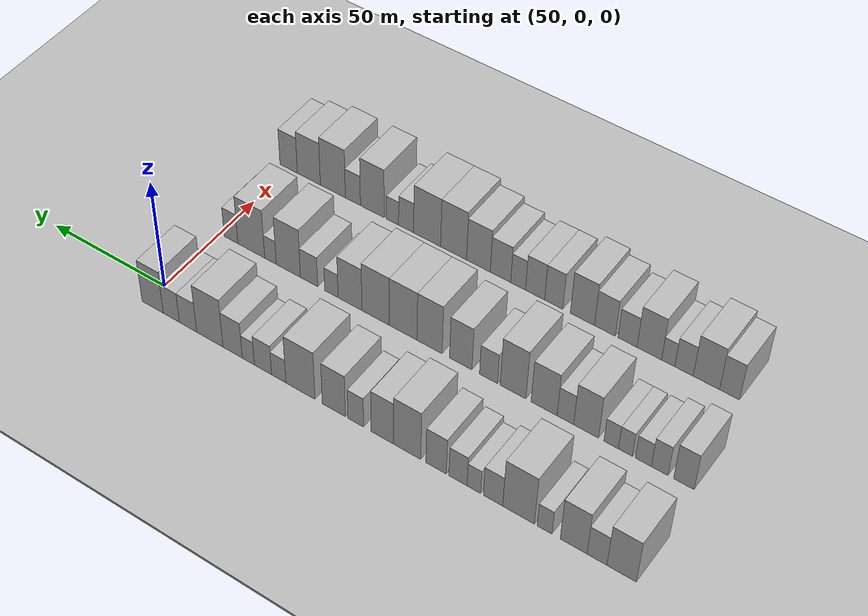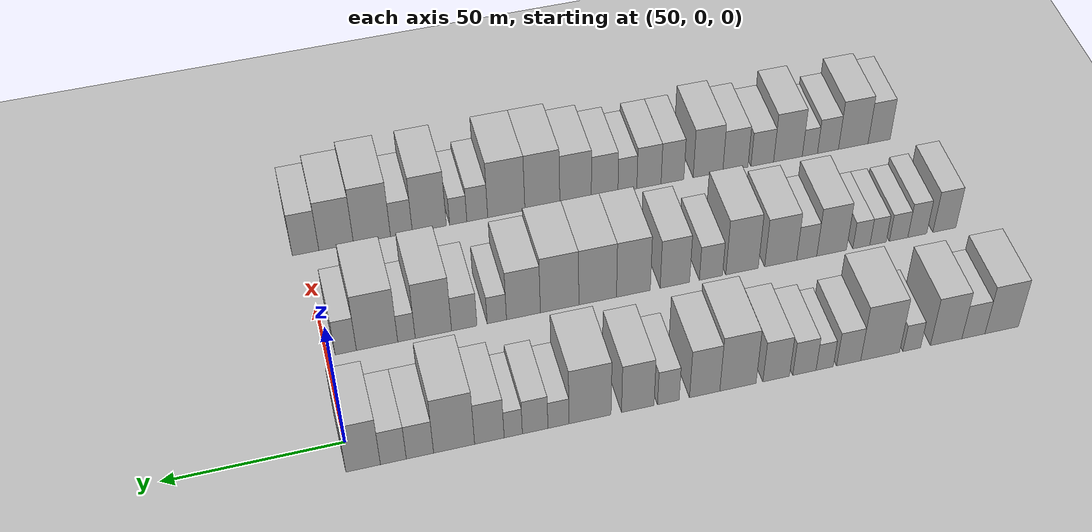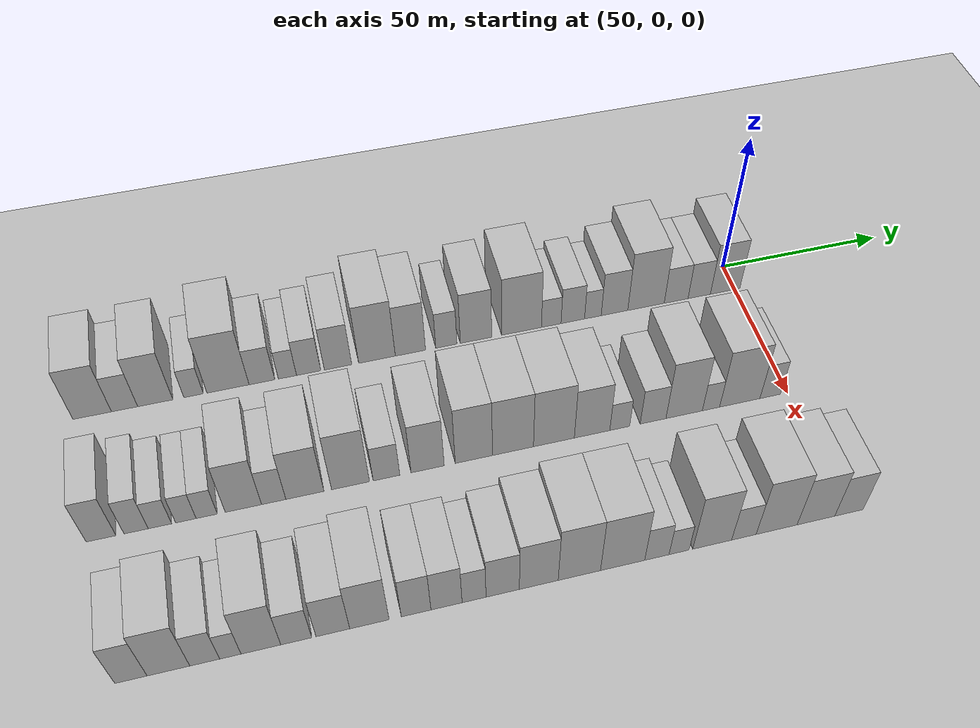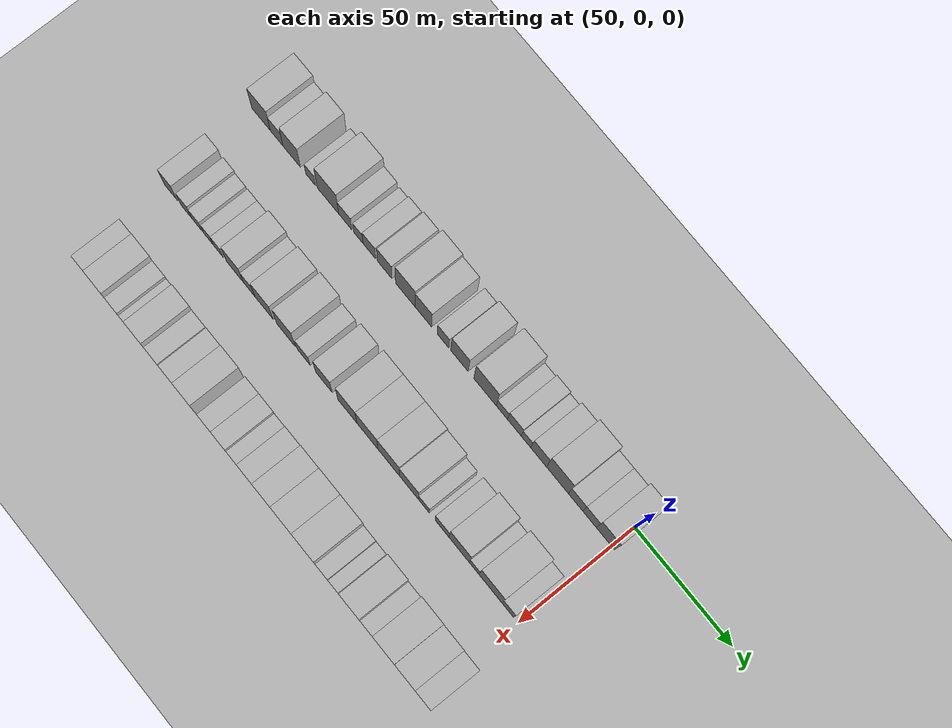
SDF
<sdf version="1.6">
 <world name="default">
  <include><name>ground_plane_1</name><uri>model://HANNAS_ground_plane</uri></include>
  <include>
   <name>ground_plane_2</name>
   <uri>model://HANNAS_ground_plane</uri>
   <pose>100 0 0  0 0 0</pose>
  </include>
  <model name="building_22">
   <static>1</static>
   <pose>50.0000 -188.0710 0 0.000000 0.000000 0.000000</pose>
   <link name="link">
    <pose>0 0 10.50 0 0 0</pose>
    <collision name="collision"><geometry><box><size>20.0000 10.3260 21.0000</size></box></geometry></collision>
    <visual name="visual">
     <cast_shadows>0</cast_shadows>
     <geometry><box><size>20.0000 10.3260 21.0000</size></box></geometry>
     <material>
      <script>
       <uri>model://HANNAS_wall/materials/scripts</uri>
       <uri>model://HANNAS_wall/materials/textures</uri>
       <name>vrc/HANNAS_wall</name>
      </script>
     </material>
    </visual>
   </link>
  </model>
  <model name="building_23">
   <static>1</static>
   <pose>50.0000 -179.3668 0 0.000000 0.000000 0.000000</pose>
   <link name="link">
    <pose>0 0 7.50 0 0 0</pose>
    <collision name="collision"><geometry><box><size>20.0000 7.0824 15.0000</size></box></geometry></collision>
    <visual name="visual">
     <cast_shadows>0</cast_shadows>
     <geometry><box><size>20.0000 7.0824 15.0000</size></box></geometry>
     <material>
      <script>
       <uri>model://HANNAS_wall/materials/scripts</uri>
       <uri>model://HANNAS_wall/materials/textures</uri>
       <name>vrc/HANNAS_wall</name>
      </script>
     </material>
    </visual>
   </link>
  </model>
  <model name="building_24">
   <static>1</static>
   <pose>50.0000 -171.0343 0 0.000000 0.000000 0.000000</pose>
   <link name="link">
    <pose>0 0 10.50 0 0 0</pose>
    <collision name="collision"><geometry><box><size>20.0000 9.5826 21.0000</size></box></geometry></collision>
    <visual name="visual">
     <cast_shadows>0</cast_shadows>
     <geometry><box><size>20.0000 9.5826 21.0000</size></box></geometry>
     <material>
      <script>
       <uri>model://HANNAS_wall/materials/scripts</uri>
       <uri>model://HANNAS_wall/materials/textures</uri>
       <name>vrc/HANNAS_wall</name>
      </script>
     </material>
    </visual>
   </link>
  </model>
  <model name="building_25">
   <static>1</static>
   <pose>50.0000 -160.5627 0 0.000000 0.000000 0.000000</pose>
   <link name="link">
    <pose>0 0 6.00 0 0 0</pose>
    <collision name="collision"><geometry><box><size>20.0000 5.3607 12.0000</size></box></geometry></collision>
    <visual name="visual">
     <cast_shadows>0</cast_shadows>
     <geometry><box><size>20.0000 5.3607 12.0000</size></box></geometry>
     <material>
      <script>
       <uri>model://HANNAS_wall/materials/scripts</uri>
       <uri>model://HANNAS_wall/materials/textures</uri>
       <name>vrc/HANNAS_wall</name>
      </script>
     </material>
    </visual>
   </link>
  </model>
  <model name="building_26">
   <static>1</static>
   <pose>50.0000 -151.0339 0 0.000000 0.000000 0.000000</pose>
   <link name="link">
    <pose>0 0 12.00 0 0 0</pose>
    <collision name="collision"><geometry><box><size>20.0000 11.6970 24.0000</size></box></geometry></collision>
    <visual name="visual">
     <cast_shadows>0</cast_shadows>
     <geometry><box><size>20.0000 11.6970 24.0000</size></box></geometry>
     <material>
      <script>
       <uri>model://HANNAS_wall/materials/scripts</uri>
       <uri>model://HANNAS_wall/materials/textures</uri>
       <name>vrc/HANNAS_wall</name>
      </script>
     </material>
    </visual>
   </link>
  </model>
  <model name="building_27">
   <static>1</static>
   <pose>50.0000 -141.5836 0 0.000000 0.000000 0.000000</pose>
   <link name="link">
    <pose>0 0 7.50 0 0 0</pose>
    <collision name="collision"><geometry><box><size>20.0000 7.2035 15.0000</size></box></geometry></collision>
    <visual name="visual">
     <cast_shadows>0</cast_shadows>
     <geometry><box><size>20.0000 7.2035 15.0000</size></box></geometry>
     <material>
      <script>
       <uri>model://HANNAS_wall/materials/scripts</uri>
       <uri>model://HANNAS_wall/materials/textures</uri>
       <name>vrc/HANNAS_wall</name>
      </script>
     </material>
    </visual>
   </link>
  </model>
  <model name="building_28">
   <static>1</static>
   <pose>50.0000 -134.4187 0 0.000000 0.000000 0.000000</pose>
   <link name="link">
    <pose>0 0 6.00 0 0 0</pose>
    <collision name="collision"><geometry><box><size>20.0000 5.1263 12.0000</size></box></geometry></collision>
    <visual name="visual">
     <cast_shadows>0</cast_shadows>
     <geometry><box><size>20.0000 5.1263 12.0000</size></box></geometry>
     <material>
      <script>
       <uri>model://HANNAS_wall/materials/scripts</uri>
       <uri>model://HANNAS_wall/materials/textures</uri>
       <name>vrc/HANNAS_wall</name>
      </script>
     </material>
    </visual>
   </link>
  </model>
  <model name="building_29">
   <static>1</static>
   <pose>50.0000 -128.4130 0 0.000000 0.000000 0.000000</pose>
   <link name="link">
    <pose>0 0 7.50 0 0 0</pose>
    <collision name="collision"><geometry><box><size>20.0000 6.8850 15.0000</size></box></geometry></collision>
    <visual name="visual">
     <cast_shadows>0</cast_shadows>
     <geometry><box><size>20.0000 6.8850 15.0000</size></box></geometry>
     <material>
      <script>
       <uri>model://HANNAS_wall/materials/scripts</uri>
       <uri>model://HANNAS_wall/materials/textures</uri>
       <name>vrc/HANNAS_wall</name>
      </script>
     </material>
    </visual>
   </link>
  </model>
  <model name="building_30">
   <static>1</static>
   <pose>50.0000 -120.0575 0 0.000000 0.000000 0.000000</pose>
   <link name="link">
    <pose>0 0 9.00 0 0 0</pose>
    <collision name="collision"><geometry><box><size>20.0000 7.8259 18.0000</size></box></geometry></collision>
    <visual name="visual">
     <cast_shadows>0</cast_shadows>
     <geometry><box><size>20.0000 7.8259 18.0000</size></box></geometry>
     <material>
      <script>
       <uri>model://HANNAS_wall/materials/scripts</uri>
       <uri>model://HANNAS_wall/materials/textures</uri>
       <name>vrc/HANNAS_wall</name>
      </script>
     </material>
    </visual>
   </link>
  </model>
  <model name="building_31">
   <static>1</static>
   <pose>50.0000 -108.8472 0 0.000000 0.000000 0.000000</pose>
   <link name="link">
    <pose>0 0 12.00 0 0 0</pose>
    <collision name="collision"><geometry><box><size>20.0000 10.5947 24.0000</size></box></geometry></collision>
    <visual name="visual">
     <cast_shadows>0</cast_shadows>
     <geometry><box><size>20.0000 10.5947 24.0000</size></box></geometry>
     <material>
      <script>
       <uri>model://HANNAS_wall/materials/scripts</uri>
       <uri>model://HANNAS_wall/materials/textures</uri>
       <name>vrc/HANNAS_wall</name>
      </script>
     </material>
    </visual>
   </link>
  </model>
  <model name="building_32">
   <static>1</static>
   <pose>50.0000 -99.1492 0 0.000000 0.000000 0.000000</pose>
   <link name="link">
    <pose>0 0 10.50 0 0 0</pose>
    <collision name="collision"><geometry><box><size>20.0000 8.8012 21.0000</size></box></geometry></collision>
    <visual name="visual">
     <cast_shadows>0</cast_shadows>
     <geometry><box><size>20.0000 8.8012 21.0000</size></box></geometry>
     <material>
      <script>
       <uri>model://HANNAS_wall/materials/scripts</uri>
       <uri>model://HANNAS_wall/materials/textures</uri>
       <name>vrc/HANNAS_wall</name>
      </script>
     </material>
    </visual>
   </link>
  </model>
  <model name="building_33">
   <static>1</static>
   <pose>50.0000 -88.6320 0 0.000000 0.000000 0.000000</pose>
   <link name="link">
    <pose>0 0 7.50 0 0 0</pose>
    <collision name="collision"><geometry><box><size>20.0000 6.2333 15.0000</size></box></geometry></collision>
    <visual name="visual">
     <cast_shadows>0</cast_shadows>
     <geometry><box><size>20.0000 6.2333 15.0000</size></box></geometry>
     <material>
      <script>
       <uri>model://HANNAS_wall/materials/scripts</uri>
       <uri>model://HANNAS_wall/materials/textures</uri>
       <name>vrc/HANNAS_wall</name>
      </script>
     </material>
    </visual>
   </link>
  </model>
  <model name="building_34">
   <static>1</static>
   <pose>50.0000 -79.8633 0 0.000000 0.000000 0.000000</pose>
   <link name="link">
    <pose>0 0 10.50 0 0 0</pose>
    <collision name="collision"><geometry><box><size>20.0000 9.3041 21.0000</size></box></geometry></collision>
    <visual name="visual">
     <cast_shadows>0</cast_shadows>
     <geometry><box><size>20.0000 9.3041 21.0000</size></box></geometry>
     <material>
      <script>
       <uri>model://HANNAS_wall/materials/scripts</uri>
       <uri>model://HANNAS_wall/materials/textures</uri>
       <name>vrc/HANNAS_wall</name>
      </script>
     </material>
    </visual>
   </link>
  </model>
  <model name="building_35">
   <static>1</static>
   <pose>50.0000 -66.2468 0 0.000000 0.000000 0.000000</pose>
   <link name="link">
    <pose>0 0 12.00 0 0 0</pose>
    <collision name="collision"><geometry><box><size>20.0000 11.9288 24.0000</size></box></geometry></collision>
    <visual name="visual">
     <cast_shadows>0</cast_shadows>
     <geometry><box><size>20.0000 11.9288 24.0000</size></box></geometry>
     <material>
      <script>
       <uri>model://HANNAS_wall/materials/scripts</uri>
       <uri>model://HANNAS_wall/materials/textures</uri>
       <name>vrc/HANNAS_wall</name>
      </script>
     </material>
    </visual>
   </link>
  </model>
  <model name="building_36">
   <static>1</static>
   <pose>50.0000 -57.3079 0 0.000000 0.000000 0.000000</pose>
   <link name="link">
    <pose>0 0 6.00 0 0 0</pose>
    <collision name="collision"><geometry><box><size>20.0000 5.9489 12.0000</size></box></geometry></collision>
    <visual name="visual">
     <cast_shadows>0</cast_shadows>
     <geometry><box><size>20.0000 5.9489 12.0000</size></box></geometry>
     <material>
      <script>
       <uri>model://HANNAS_wall/materials/scripts</uri>
       <uri>model://HANNAS_wall/materials/textures</uri>
       <name>vrc/HANNAS_wall</name>
      </script>
     </material>
    </visual>
   </link>
  </model>
  <model name="building_37">
   <static>1</static>
   <pose>50.0000 -50.7439 0 0.000000 0.000000 0.000000</pose>
   <link name="link">
    <pose>0 0 7.50 0 0 0</pose>
    <collision name="collision"><geometry><box><size>20.0000 7.1791 15.0000</size></box></geometry></collision>
    <visual name="visual">
     <cast_shadows>0</cast_shadows>
     <geometry><box><size>20.0000 7.1791 15.0000</size></box></geometry>
     <material>
      <script>
       <uri>model://HANNAS_wall/materials/scripts</uri>
       <uri>model://HANNAS_wall/materials/textures</uri>
       <name>vrc/HANNAS_wall</name>
      </script>
     </material>
    </visual>
   </link>
  </model>
  <model name="building_38">
   <static>1</static>
   <pose>50.0000 -44.6088 0 0.000000 0.000000 0.000000</pose>
   <link name="link">
    <pose>0 0 6.00 0 0 0</pose>
    <collision name="collision"><geometry><box><size>20.0000 5.0910 12.0000</size></box></geometry></collision>
    <visual name="visual">
     <cast_shadows>0</cast_shadows>
     <geometry><box><size>20.0000 5.0910 12.0000</size></box></geometry>
     <material>
      <script>
       <uri>model://HANNAS_wall/materials/scripts</uri>
       <uri>model://HANNAS_wall/materials/textures</uri>
       <name>vrc/HANNAS_wall</name>
      </script>
     </material>
    </visual>
   </link>
  </model>
  <model name="building_39">
   <static>1</static>
   <pose>50.0000 -37.9545 0 0.000000 0.000000 0.000000</pose>
   <link name="link">
    <pose>0 0 9.00 0 0 0</pose>
    <collision name="collision"><geometry><box><size>20.0000 8.2177 18.0000</size></box></geometry></collision>
    <visual name="visual">
     <cast_shadows>0</cast_shadows>
     <geometry><box><size>20.0000 8.2177 18.0000</size></box></geometry>
     <material>
      <script>
       <uri>model://HANNAS_wall/materials/scripts</uri>
       <uri>model://HANNAS_wall/materials/textures</uri>
       <name>vrc/HANNAS_wall</name>
      </script>
     </material>
    </visual>
   </link>
  </model>
  <model name="building_40">
   <static>1</static>
   <pose>50.0000 -28.1749 0 0.000000 0.000000 0.000000</pose>
   <link name="link">
    <pose>0 0 12.00 0 0 0</pose>
    <collision name="collision"><geometry><box><size>20.0000 11.3417 24.0000</size></box></geometry></collision>
    <visual name="visual">
     <cast_shadows>0</cast_shadows>
     <geometry><box><size>20.0000 11.3417 24.0000</size></box></geometry>
     <material>
      <script>
       <uri>model://HANNAS_wall/materials/scripts</uri>
       <uri>model://HANNAS_wall/materials/textures</uri>
       <name>vrc/HANNAS_wall</name>
      </script>
     </material>
    </visual>
   </link>
  </model>
  <model name="building_41">
   <static>1</static>
   <pose>50.0000 -18.7545 0 0.000000 0.000000 0.000000</pose>
   <link name="link">
    <pose>0 0 7.50 0 0 0</pose>
    <collision name="collision"><geometry><box><size>20.0000 7.4990 15.0000</size></box></geometry></collision>
    <visual name="visual">
     <cast_shadows>0</cast_shadows>
     <geometry><box><size>20.0000 7.4990 15.0000</size></box></geometry>
     <material>
      <script>
       <uri>model://HANNAS_wall/materials/scripts</uri>
       <uri>model://HANNAS_wall/materials/textures</uri>
       <name>vrc/HANNAS_wall</name>
      </script>
     </material>
    </visual>
   </link>
  </model>
  <model name="building_42">
   <static>1</static>
   <pose>50.0000 -11.4715 0 0.000000 0.000000 0.000000</pose>
   <link name="link">
    <pose>0 0 7.50 0 0 0</pose>
    <collision name="collision"><geometry><box><size>20.0000 7.0669 15.0000</size></box></geometry></collision>
    <visual name="visual">
     <cast_shadows>0</cast_shadows>
     <geometry><box><size>20.0000 7.0669 15.0000</size></box></geometry>
     <material>
      <script>
       <uri>model://HANNAS_wall/materials/scripts</uri>
       <uri>model://HANNAS_wall/materials/textures</uri>
       <name>vrc/HANNAS_wall</name>
      </script>
     </material>
    </visual>
   </link>
  </model>
  <model name="building_43">
   <static>1</static>
   <pose>50.0000 -3.2431 0 0.000000 0.000000 0.000000</pose>
   <link name="link">
    <pose>0 0 10.50 0 0 0</pose>
    <collision name="collision"><geometry><box><size>20.0000 9.3899 21.0000</size></box></geometry></collision>
    <visual name="visual">
     <cast_shadows>0</cast_shadows>
     <geometry><box><size>20.0000 9.3899 21.0000</size></box></geometry>
     <material>
      <script>
       <uri>model://HANNAS_wall/materials/scripts</uri>
       <uri>model://HANNAS_wall/materials/textures</uri>
       <name>vrc/HANNAS_wall</name>
      </script>
     </material>
    </visual>
   </link>
  </model>
  <model name="building_109">
   <static>1</static>
   <pose>90.0000 -186.9932 0 0.000000 0.000000 0.000000</pose>
   <link name="link">
    <pose>0 0 9.00 0 0 0</pose>
    <collision name="collision"><geometry><box><size>20.0000 7.3867 18.0000</size></box></geometry></collision>
    <visual name="visual">
     <cast_shadows>0</cast_shadows>
     <geometry><box><size>20.0000 7.3867 18.0000</size></box></geometry>
     <material>
      <script>
       <uri>model://HANNAS_wall/materials/scripts</uri>
       <uri>model://HANNAS_wall/materials/textures</uri>
       <name>vrc/HANNAS_wall</name>
      </script>
     </material>
    </visual>
   </link>
  </model>
  <model name="building_110">
   <static>1</static>
   <pose>90.0000 -178.2775 0 0.000000 0.000000 0.000000</pose>
   <link name="link">
    <pose>0 0 7.50 0 0 0</pose>
    <collision name="collision"><geometry><box><size>20.0000 6.0447 15.0000</size></box></geometry></collision>
    <visual name="visual">
     <cast_shadows>0</cast_shadows>
     <geometry><box><size>20.0000 6.0447 15.0000</size></box></geometry>
     <material>
      <script>
       <uri>model://HANNAS_wall/materials/scripts</uri>
       <uri>model://HANNAS_wall/materials/textures</uri>
       <name>vrc/HANNAS_wall</name>
      </script>
     </material>
    </visual>
   </link>
  </model>
  <model name="building_111">
   <static>1</static>
   <pose>90.0000 -172.3092 0 0.000000 0.000000 0.000000</pose>
   <link name="link">
    <pose>0 0 6.00 0 0 0</pose>
    <collision name="collision"><geometry><box><size>20.0000 5.8917 12.0000</size></box></geometry></collision>
    <visual name="visual">
     <cast_shadows>0</cast_shadows>
     <geometry><box><size>20.0000 5.8917 12.0000</size></box></geometry>
     <material>
      <script>
       <uri>model://HANNAS_wall/materials/scripts</uri>
       <uri>model://HANNAS_wall/materials/textures</uri>
       <name>vrc/HANNAS_wall</name>
      </script>
     </material>
    </visual>
   </link>
  </model>
  <model name="building_112">
   <static>1</static>
   <pose>90.0000 -165.7691 0 0.000000 0.000000 0.000000</pose>
   <link name="link">
    <pose>0 0 6.00 0 0 0</pose>
    <collision name="collision"><geometry><box><size>20.0000 5.1885 12.0000</size></box></geometry></collision>
    <visual name="visual">
     <cast_shadows>0</cast_shadows>
     <geometry><box><size>20.0000 5.1885 12.0000</size></box></geometry>
     <material>
      <script>
       <uri>model://HANNAS_wall/materials/scripts</uri>
       <uri>model://HANNAS_wall/materials/textures</uri>
       <name>vrc/HANNAS_wall</name>
      </script>
     </material>
    </visual>
   </link>
  </model>
  <model name="building_113">
   <static>1</static>
   <pose>90.0000 -160.4682 0 0.000000 0.000000 0.000000</pose>
   <link name="link">
    <pose>0 0 6.00 0 0 0</pose>
    <collision name="collision"><geometry><box><size>20.0000 5.4134 12.0000</size></box></geometry></collision>
    <visual name="visual">
     <cast_shadows>0</cast_shadows>
     <geometry><box><size>20.0000 5.4134 12.0000</size></box></geometry>
     <material>
      <script>
       <uri>model://HANNAS_wall/materials/scripts</uri>
       <uri>model://HANNAS_wall/materials/textures</uri>
       <name>vrc/HANNAS_wall</name>
      </script>
     </material>
    </visual>
   </link>
  </model>
  <model name="building_114">
   <static>1</static>
   <pose>90.0000 -151.0867 0 0.000000 0.000000 0.000000</pose>
   <link name="link">
    <pose>0 0 10.50 0 0 0</pose>
    <collision name="collision"><geometry><box><size>20.0000 9.3495 21.0000</size></box></geometry></collision>
    <visual name="visual">
     <cast_shadows>0</cast_shadows>
     <geometry><box><size>20.0000 9.3495 21.0000</size></box></geometry>
     <material>
      <script>
       <uri>model://HANNAS_wall/materials/scripts</uri>
       <uri>model://HANNAS_wall/materials/textures</uri>
       <name>vrc/HANNAS_wall</name>
      </script>
     </material>
    </visual>
   </link>
  </model>
  <model name="building_115">
   <static>1</static>
   <pose>90.0000 -143.2649 0 0.000000 0.000000 0.000000</pose>
   <link name="link">
    <pose>0 0 7.50 0 0 0</pose>
    <collision name="collision"><geometry><box><size>20.0000 6.2942 15.0000</size></box></geometry></collision>
    <visual name="visual">
     <cast_shadows>0</cast_shadows>
     <geometry><box><size>20.0000 6.2942 15.0000</size></box></geometry>
     <material>
      <script>
       <uri>model://HANNAS_wall/materials/scripts</uri>
       <uri>model://HANNAS_wall/materials/textures</uri>
       <name>vrc/HANNAS_wall</name>
      </script>
     </material>
    </visual>
   </link>
  </model>
  <model name="building_116">
   <static>1</static>
   <pose>90.0000 -135.1408 0 0.000000 0.000000 0.000000</pose>
   <link name="link">
    <pose>0 0 10.50 0 0 0</pose>
    <collision name="collision"><geometry><box><size>20.0000 9.9539 21.0000</size></box></geometry></collision>
    <visual name="visual">
     <cast_shadows>0</cast_shadows>
     <geometry><box><size>20.0000 9.9539 21.0000</size></box></geometry>
     <material>
      <script>
       <uri>model://HANNAS_wall/materials/scripts</uri>
       <uri>model://HANNAS_wall/materials/textures</uri>
       <name>vrc/HANNAS_wall</name>
      </script>
     </material>
    </visual>
   </link>
  </model>
  <model name="building_117">
   <static>1</static>
   <pose>90.0000 -123.1481 0 0.000000 0.000000 0.000000</pose>
   <link name="link">
    <pose>0 0 12.00 0 0 0</pose>
    <collision name="collision"><geometry><box><size>20.0000 10.0316 24.0000</size></box></geometry></collision>
    <visual name="visual">
     <cast_shadows>0</cast_shadows>
     <geometry><box><size>20.0000 10.0316 24.0000</size></box></geometry>
     <material>
      <script>
       <uri>model://HANNAS_wall/materials/scripts</uri>
       <uri>model://HANNAS_wall/materials/textures</uri>
       <name>vrc/HANNAS_wall</name>
      </script>
     </material>
    </visual>
   </link>
  </model>
  <model name="building_118">
   <static>1</static>
   <pose>90.0000 -113.5759 0 0.000000 0.000000 0.000000</pose>
   <link name="link">
    <pose>0 0 7.50 0 0 0</pose>
    <collision name="collision"><geometry><box><size>20.0000 7.1128 15.0000</size></box></geometry></collision>
    <visual name="visual">
     <cast_shadows>0</cast_shadows>
     <geometry><box><size>20.0000 7.1128 15.0000</size></box></geometry>
     <material>
      <script>
       <uri>model://HANNAS_wall/materials/scripts</uri>
       <uri>model://HANNAS_wall/materials/textures</uri>
       <name>vrc/HANNAS_wall</name>
      </script>
     </material>
    </visual>
   </link>
  </model>
  <model name="building_119">
   <static>1</static>
   <pose>90.0000 -102.5385 0 0.000000 0.000000 0.000000</pose>
   <link name="link">
    <pose>0 0 10.50 0 0 0</pose>
    <collision name="collision"><geometry><box><size>20.0000 8.9620 21.0000</size></box></geometry></collision>
    <visual name="visual">
     <cast_shadows>0</cast_shadows>
     <geometry><box><size>20.0000 8.9620 21.0000</size></box></geometry>
     <material>
      <script>
       <uri>model://HANNAS_wall/materials/scripts</uri>
       <uri>model://HANNAS_wall/materials/textures</uri>
       <name>vrc/HANNAS_wall</name>
      </script>
     </material>
    </visual>
   </link>
  </model>
  <model name="building_120">
   <static>1</static>
   <pose>90.0000 -89.9504 0 0.000000 0.000000 0.000000</pose>
   <link name="link">
    <pose>0 0 12.00 0 0 0</pose>
    <collision name="collision"><geometry><box><size>20.0000 10.2141 24.0000</size></box></geometry></collision>
    <visual name="visual">
     <cast_shadows>0</cast_shadows>
     <geometry><box><size>20.0000 10.2141 24.0000</size></box></geometry>
     <material>
      <script>
       <uri>model://HANNAS_wall/materials/scripts</uri>
       <uri>model://HANNAS_wall/materials/textures</uri>
       <name>vrc/HANNAS_wall</name>
      </script>
     </material>
    </visual>
   </link>
  </model>
  <model name="building_121">
   <static>1</static>
   <pose>90.0000 -79.1852 0 0.000000 0.000000 0.000000</pose>
   <link name="link">
    <pose>0 0 12.00 0 0 0</pose>
    <collision name="collision"><geometry><box><size>20.0000 11.3163 24.0000</size></box></geometry></collision>
    <visual name="visual">
     <cast_shadows>0</cast_shadows>
     <geometry><box><size>20.0000 11.3163 24.0000</size></box></geometry>
     <material>
      <script>
       <uri>model://HANNAS_wall/materials/scripts</uri>
       <uri>model://HANNAS_wall/materials/textures</uri>
       <name>vrc/HANNAS_wall</name>
      </script>
     </material>
    </visual>
   </link>
  </model>
  <model name="building_122">
   <static>1</static>
   <pose>90.0000 -67.8106 0 0.000000 0.000000 0.000000</pose>
   <link name="link">
    <pose>0 0 12.00 0 0 0</pose>
    <collision name="collision"><geometry><box><size>20.0000 11.4330 24.0000</size></box></geometry></collision>
    <visual name="visual">
     <cast_shadows>0</cast_shadows>
     <geometry><box><size>20.0000 11.4330 24.0000</size></box></geometry>
     <material>
      <script>
       <uri>model://HANNAS_wall/materials/scripts</uri>
       <uri>model://HANNAS_wall/materials/textures</uri>
       <name>vrc/HANNAS_wall</name>
      </script>
     </material>
    </visual>
   </link>
  </model>
  <model name="building_123">
   <static>1</static>
   <pose>90.0000 -57.0728 0 0.000000 0.000000 0.000000</pose>
   <link name="link">
    <pose>0 0 10.50 0 0 0</pose>
    <collision name="collision"><geometry><box><size>20.0000 10.0425 21.0000</size></box></geometry></collision>
    <visual name="visual">
     <cast_shadows>0</cast_shadows>
     <geometry><box><size>20.0000 10.0425 21.0000</size></box></geometry>
     <material>
      <script>
       <uri>model://HANNAS_wall/materials/scripts</uri>
       <uri>model://HANNAS_wall/materials/textures</uri>
       <name>vrc/HANNAS_wall</name>
      </script>
     </material>
    </visual>
   </link>
  </model>
  <model name="building_124">
   <static>1</static>
   <pose>90.0000 -49.2129 0 0.000000 0.000000 0.000000</pose>
   <link name="link">
    <pose>0 0 6.00 0 0 0</pose>
    <collision name="collision"><geometry><box><size>20.0000 5.6773 12.0000</size></box></geometry></collision>
    <visual name="visual">
     <cast_shadows>0</cast_shadows>
     <geometry><box><size>20.0000 5.6773 12.0000</size></box></geometry>
     <material>
      <script>
       <uri>model://HANNAS_wall/materials/scripts</uri>
       <uri>model://HANNAS_wall/materials/textures</uri>
       <name>vrc/HANNAS_wall</name>
      </script>
     </material>
    </visual>
   </link>
  </model>
  <model name="building_125">
   <static>1</static>
   <pose>90.0000 -39.6652 0 0.000000 0.000000 0.000000</pose>
   <link name="link">
    <pose>0 0 7.50 0 0 0</pose>
    <collision name="collision"><geometry><box><size>20.0000 7.4181 15.0000</size></box></geometry></collision>
    <visual name="visual">
     <cast_shadows>0</cast_shadows>
     <geometry><box><size>20.0000 7.4181 15.0000</size></box></geometry>
     <material>
      <script>
       <uri>model://HANNAS_wall/materials/scripts</uri>
       <uri>model://HANNAS_wall/materials/textures</uri>
       <name>vrc/HANNAS_wall</name>
      </script>
     </material>
    </visual>
   </link>
  </model>
  <model name="building_126">
   <static>1</static>
   <pose>90.0000 -30.6695 0 0.000000 0.000000 0.000000</pose>
   <link name="link">
    <pose>0 0 12.00 0 0 0</pose>
    <collision name="collision"><geometry><box><size>20.0000 10.5735 24.0000</size></box></geometry></collision>
    <visual name="visual">
     <cast_shadows>0</cast_shadows>
     <geometry><box><size>20.0000 10.5735 24.0000</size></box></geometry>
     <material>
      <script>
       <uri>model://HANNAS_wall/materials/scripts</uri>
       <uri>model://HANNAS_wall/materials/textures</uri>
       <name>vrc/HANNAS_wall</name>
      </script>
     </material>
    </visual>
   </link>
  </model>
  <model name="building_127">
   <static>1</static>
   <pose>90.0000 -22.8529 0 0.000000 0.000000 0.000000</pose>
   <link name="link">
    <pose>0 0 6.00 0 0 0</pose>
    <collision name="collision"><geometry><box><size>20.0000 5.0597 12.0000</size></box></geometry></collision>
    <visual name="visual">
     <cast_shadows>0</cast_shadows>
     <geometry><box><size>20.0000 5.0597 12.0000</size></box></geometry>
     <material>
      <script>
       <uri>model://HANNAS_wall/materials/scripts</uri>
       <uri>model://HANNAS_wall/materials/textures</uri>
       <name>vrc/HANNAS_wall</name>
      </script>
     </material>
    </visual>
   </link>
  </model>
  <model name="building_128">
   <static>1</static>
   <pose>90.0000 -14.3776 0 0.000000 0.000000 0.000000</pose>
   <link name="link">
    <pose>0 0 12.00 0 0 0</pose>
    <collision name="collision"><geometry><box><size>20.0000 11.8908 24.0000</size></box></geometry></collision>
    <visual name="visual">
     <cast_shadows>0</cast_shadows>
     <geometry><box><size>20.0000 11.8908 24.0000</size></box></geometry>
     <material>
      <script>
       <uri>model://HANNAS_wall/materials/scripts</uri>
       <uri>model://HANNAS_wall/materials/textures</uri>
       <name>vrc/HANNAS_wall</name>
      </script>
     </material>
    </visual>
   </link>
  </model>
  <model name="building_129">
   <static>1</static>
   <pose>90.0000 -5.3818 0 0.000000 0.000000 0.000000</pose>
   <link name="link">
    <pose>0 0 7.50 0 0 0</pose>
    <collision name="collision"><geometry><box><size>20.0000 6.1009 15.0000</size></box></geometry></collision>
    <visual name="visual">
     <cast_shadows>0</cast_shadows>
     <geometry><box><size>20.0000 6.1009 15.0000</size></box></geometry>
     <material>
      <script>
       <uri>model://HANNAS_wall/materials/scripts</uri>
       <uri>model://HANNAS_wall/materials/textures</uri>
       <name>vrc/HANNAS_wall</name>
      </script>
     </material>
    </visual>
   </link>
  </model>
  <model name="building_198">
   <static>1</static>
   <pose>130.0000 -181.4924 0 0.000000 0.000000 0.000000</pose>
   <link name="link">
    <pose>0 0 9.00 0 0 0</pose>
    <collision name="collision"><geometry><box><size>20.0000 7.3754 18.0000</size></box></geometry></collision>
    <visual name="visual">
     <cast_shadows>0</cast_shadows>
     <geometry><box><size>20.0000 7.3754 18.0000</size></box></geometry>
     <material>
      <script>
       <uri>model://HANNAS_wall/materials/scripts</uri>
       <uri>model://HANNAS_wall/materials/textures</uri>
       <name>vrc/HANNAS_wall</name>
      </script>
     </material>
    </visual>
   </link>
  </model>
  <model name="building_199">
   <static>1</static>
   <pose>130.0000 -172.8760 0 0.000000 0.000000 0.000000</pose>
   <link name="link">
    <pose>0 0 10.50 0 0 0</pose>
    <collision name="collision"><geometry><box><size>20.0000 9.8574 21.0000</size></box></geometry></collision>
    <visual name="visual">
     <cast_shadows>0</cast_shadows>
     <geometry><box><size>20.0000 9.8574 21.0000</size></box></geometry>
     <material>
      <script>
       <uri>model://HANNAS_wall/materials/scripts</uri>
       <uri>model://HANNAS_wall/materials/textures</uri>
       <name>vrc/HANNAS_wall</name>
      </script>
     </material>
    </visual>
   </link>
  </model>
  <model name="building_200">
   <static>1</static>
   <pose>130.0000 -164.4748 0 0.000000 0.000000 0.000000</pose>
   <link name="link">
    <pose>0 0 7.50 0 0 0</pose>
    <collision name="collision"><geometry><box><size>20.0000 6.9452 15.0000</size></box></geometry></collision>
    <visual name="visual">
     <cast_shadows>0</cast_shadows>
     <geometry><box><size>20.0000 6.9452 15.0000</size></box></geometry>
     <material>
      <script>
       <uri>model://HANNAS_wall/materials/scripts</uri>
       <uri>model://HANNAS_wall/materials/textures</uri>
       <name>vrc/HANNAS_wall</name>
      </script>
     </material>
    </visual>
   </link>
  </model>
  <model name="building_201">
   <static>1</static>
   <pose>130.0000 -158.4913 0 0.000000 0.000000 0.000000</pose>
   <link name="link">
    <pose>0 0 6.00 0 0 0</pose>
    <collision name="collision"><geometry><box><size>20.0000 5.0218 12.0000</size></box></geometry></collision>
    <visual name="visual">
     <cast_shadows>0</cast_shadows>
     <geometry><box><size>20.0000 5.0218 12.0000</size></box></geometry>
     <material>
      <script>
       <uri>model://HANNAS_wall/materials/scripts</uri>
       <uri>model://HANNAS_wall/materials/textures</uri>
       <name>vrc/HANNAS_wall</name>
      </script>
     </material>
    </visual>
   </link>
  </model>
  <model name="building_202">
   <static>1</static>
   <pose>130.0000 -151.2741 0 0.000000 0.000000 0.000000</pose>
   <link name="link">
    <pose>0 0 10.50 0 0 0</pose>
    <collision name="collision"><geometry><box><size>20.0000 9.4126 21.0000</size></box></geometry></collision>
    <visual name="visual">
     <cast_shadows>0</cast_shadows>
     <geometry><box><size>20.0000 9.4126 21.0000</size></box></geometry>
     <material>
      <script>
       <uri>model://HANNAS_wall/materials/scripts</uri>
       <uri>model://HANNAS_wall/materials/textures</uri>
       <name>vrc/HANNAS_wall</name>
      </script>
     </material>
    </visual>
   </link>
  </model>
  <model name="building_203">
   <static>1</static>
   <pose>130.0000 -142.8653 0 0.000000 0.000000 0.000000</pose>
   <link name="link">
    <pose>0 0 7.50 0 0 0</pose>
    <collision name="collision"><geometry><box><size>20.0000 7.4049 15.0000</size></box></geometry></collision>
    <visual name="visual">
     <cast_shadows>0</cast_shadows>
     <geometry><box><size>20.0000 7.4049 15.0000</size></box></geometry>
     <material>
      <script>
       <uri>model://HANNAS_wall/materials/scripts</uri>
       <uri>model://HANNAS_wall/materials/textures</uri>
       <name>vrc/HANNAS_wall</name>
      </script>
     </material>
    </visual>
   </link>
  </model>
  <model name="building_204">
   <static>1</static>
   <pose>130.0000 -134.0860 0 0.000000 0.000000 0.000000</pose>
   <link name="link">
    <pose>0 0 9.00 0 0 0</pose>
    <collision name="collision"><geometry><box><size>20.0000 8.1538 18.0000</size></box></geometry></collision>
    <visual name="visual">
     <cast_shadows>0</cast_shadows>
     <geometry><box><size>20.0000 8.1538 18.0000</size></box></geometry>
     <material>
      <script>
       <uri>model://HANNAS_wall/materials/scripts</uri>
       <uri>model://HANNAS_wall/materials/textures</uri>
       <name>vrc/HANNAS_wall</name>
      </script>
     </material>
    </visual>
   </link>
  </model>
  <model name="building_205">
   <static>1</static>
   <pose>130.0000 -125.2215 0 0.000000 0.000000 0.000000</pose>
   <link name="link">
    <pose>0 0 10.50 0 0 0</pose>
    <collision name="collision"><geometry><box><size>20.0000 9.5751 21.0000</size></box></geometry></collision>
    <visual name="visual">
     <cast_shadows>0</cast_shadows>
     <geometry><box><size>20.0000 9.5751 21.0000</size></box></geometry>
     <material>
      <script>
       <uri>model://HANNAS_wall/materials/scripts</uri>
       <uri>model://HANNAS_wall/materials/textures</uri>
       <name>vrc/HANNAS_wall</name>
      </script>
     </material>
    </visual>
   </link>
  </model>
  <model name="building_206">
   <static>1</static>
   <pose>130.0000 -113.7763 0 0.000000 0.000000 0.000000</pose>
   <link name="link">
    <pose>0 0 9.00 0 0 0</pose>
    <collision name="collision"><geometry><box><size>20.0000 7.3153 18.0000</size></box></geometry></collision>
    <visual name="visual">
     <cast_shadows>0</cast_shadows>
     <geometry><box><size>20.0000 7.3153 18.0000</size></box></geometry>
     <material>
      <script>
       <uri>model://HANNAS_wall/materials/scripts</uri>
       <uri>model://HANNAS_wall/materials/textures</uri>
       <name>vrc/HANNAS_wall</name>
      </script>
     </material>
    </visual>
   </link>
  </model>
  <model name="building_207">
   <static>1</static>
   <pose>130.0000 -106.2501 0 0.000000 0.000000 0.000000</pose>
   <link name="link">
    <pose>0 0 9.00 0 0 0</pose>
    <collision name="collision"><geometry><box><size>20.0000 7.7370 18.0000</size></box></geometry></collision>
    <visual name="visual">
     <cast_shadows>0</cast_shadows>
     <geometry><box><size>20.0000 7.7370 18.0000</size></box></geometry>
     <material>
      <script>
       <uri>model://HANNAS_wall/materials/scripts</uri>
       <uri>model://HANNAS_wall/materials/textures</uri>
       <name>vrc/HANNAS_wall</name>
      </script>
     </material>
    </visual>
   </link>
  </model>
  <model name="building_208">
   <static>1</static>
   <pose>130.0000 -99.3802 0 0.000000 0.000000 0.000000</pose>
   <link name="link">
    <pose>0 0 7.50 0 0 0</pose>
    <collision name="collision"><geometry><box><size>20.0000 6.0028 15.0000</size></box></geometry></collision>
    <visual name="visual">
     <cast_shadows>0</cast_shadows>
     <geometry><box><size>20.0000 6.0028 15.0000</size></box></geometry>
     <material>
      <script>
       <uri>model://HANNAS_wall/materials/scripts</uri>
       <uri>model://HANNAS_wall/materials/textures</uri>
       <name>vrc/HANNAS_wall</name>
      </script>
     </material>
    </visual>
   </link>
  </model>
  <model name="building_209">
   <static>1</static>
   <pose>130.0000 -92.1714 0 0.000000 0.000000 0.000000</pose>
   <link name="link">
    <pose>0 0 9.00 0 0 0</pose>
    <collision name="collision"><geometry><box><size>20.0000 8.4150 18.0000</size></box></geometry></collision>
    <visual name="visual">
     <cast_shadows>0</cast_shadows>
     <geometry><box><size>20.0000 8.4150 18.0000</size></box></geometry>
     <material>
      <script>
       <uri>model://HANNAS_wall/materials/scripts</uri>
       <uri>model://HANNAS_wall/materials/textures</uri>
       <name>vrc/HANNAS_wall</name>
      </script>
     </material>
    </visual>
   </link>
  </model>
  <model name="building_210">
   <static>1</static>
   <pose>130.0000 -83.0090 0 0.000000 0.000000 0.000000</pose>
   <link name="link">
    <pose>0 0 10.50 0 0 0</pose>
    <collision name="collision"><geometry><box><size>20.0000 9.9097 21.0000</size></box></geometry></collision>
    <visual name="visual">
     <cast_shadows>0</cast_shadows>
     <geometry><box><size>20.0000 9.9097 21.0000</size></box></geometry>
     <material>
      <script>
       <uri>model://HANNAS_wall/materials/scripts</uri>
       <uri>model://HANNAS_wall/materials/textures</uri>
       <name>vrc/HANNAS_wall</name>
      </script>
     </material>
    </visual>
   </link>
  </model>
  <model name="building_211">
   <static>1</static>
   <pose>130.0000 -72.5919 0 0.000000 0.000000 0.000000</pose>
   <link name="link">
    <pose>0 0 12.00 0 0 0</pose>
    <collision name="collision"><geometry><box><size>20.0000 10.9245 24.0000</size></box></geometry></collision>
    <visual name="visual">
     <cast_shadows>0</cast_shadows>
     <geometry><box><size>20.0000 10.9245 24.0000</size></box></geometry>
     <material>
      <script>
       <uri>model://HANNAS_wall/materials/scripts</uri>
       <uri>model://HANNAS_wall/materials/textures</uri>
       <name>vrc/HANNAS_wall</name>
      </script>
     </material>
    </visual>
   </link>
  </model>
  <model name="building_212">
   <static>1</static>
   <pose>130.0000 -61.3527 0 0.000000 0.000000 0.000000</pose>
   <link name="link">
    <pose>0 0 12.00 0 0 0</pose>
    <collision name="collision"><geometry><box><size>20.0000 11.5540 24.0000</size></box></geometry></collision>
    <visual name="visual">
     <cast_shadows>0</cast_shadows>
     <geometry><box><size>20.0000 11.5540 24.0000</size></box></geometry>
     <material>
      <script>
       <uri>model://HANNAS_wall/materials/scripts</uri>
       <uri>model://HANNAS_wall/materials/textures</uri>
       <name>vrc/HANNAS_wall</name>
      </script>
     </material>
    </visual>
   </link>
  </model>
  <model name="building_213">
   <static>1</static>
   <pose>130.0000 -52.3563 0 0.000000 0.000000 0.000000</pose>
   <link name="link">
    <pose>0 0 7.50 0 0 0</pose>
    <collision name="collision"><geometry><box><size>20.0000 6.4388 15.0000</size></box></geometry></collision>
    <visual name="visual">
     <cast_shadows>0</cast_shadows>
     <geometry><box><size>20.0000 6.4388 15.0000</size></box></geometry>
     <material>
      <script>
       <uri>model://HANNAS_wall/materials/scripts</uri>
       <uri>model://HANNAS_wall/materials/textures</uri>
       <name>vrc/HANNAS_wall</name>
      </script>
     </material>
    </visual>
   </link>
  </model>
  <model name="building_214">
   <static>1</static>
   <pose>130.0000 -46.4885 0 0.000000 0.000000 0.000000</pose>
   <link name="link">
    <pose>0 0 6.00 0 0 0</pose>
    <collision name="collision"><geometry><box><size>20.0000 5.2968 12.0000</size></box></geometry></collision>
    <visual name="visual">
     <cast_shadows>0</cast_shadows>
     <geometry><box><size>20.0000 5.2968 12.0000</size></box></geometry>
     <material>
      <script>
       <uri>model://HANNAS_wall/materials/scripts</uri>
       <uri>model://HANNAS_wall/materials/textures</uri>
       <name>vrc/HANNAS_wall</name>
      </script>
     </material>
    </visual>
   </link>
  </model>
  <model name="building_215">
   <static>1</static>
   <pose>130.0000 -37.6337 0 0.000000 0.000000 0.000000</pose>
   <link name="link">
    <pose>0 0 12.00 0 0 0</pose>
    <collision name="collision"><geometry><box><size>20.0000 10.4129 24.0000</size></box></geometry></collision>
    <visual name="visual">
     <cast_shadows>0</cast_shadows>
     <geometry><box><size>20.0000 10.4129 24.0000</size></box></geometry>
     <material>
      <script>
       <uri>model://HANNAS_wall/materials/scripts</uri>
       <uri>model://HANNAS_wall/materials/textures</uri>
       <name>vrc/HANNAS_wall</name>
      </script>
     </material>
    </visual>
   </link>
  </model>
  <model name="building_216">
   <static>1</static>
   <pose>130.0000 -29.1081 0 0.000000 0.000000 0.000000</pose>
   <link name="link">
    <pose>0 0 7.50 0 0 0</pose>
    <collision name="collision"><geometry><box><size>20.0000 6.6382 15.0000</size></box></geometry></collision>
    <visual name="visual">
     <cast_shadows>0</cast_shadows>
     <geometry><box><size>20.0000 6.6382 15.0000</size></box></geometry>
     <material>
      <script>
       <uri>model://HANNAS_wall/materials/scripts</uri>
       <uri>model://HANNAS_wall/materials/textures</uri>
       <name>vrc/HANNAS_wall</name>
      </script>
     </material>
    </visual>
   </link>
  </model>
  <model name="building_217">
   <static>1</static>
   <pose>130.0000 -20.1897 0 0.000000 0.000000 0.000000</pose>
   <link name="link">
    <pose>0 0 12.00 0 0 0</pose>
    <collision name="collision"><geometry><box><size>20.0000 11.1986 24.0000</size></box></geometry></collision>
    <visual name="visual">
     <cast_shadows>0</cast_shadows>
     <geometry><box><size>20.0000 11.1986 24.0000</size></box></geometry>
     <material>
      <script>
       <uri>model://HANNAS_wall/materials/scripts</uri>
       <uri>model://HANNAS_wall/materials/textures</uri>
       <name>vrc/HANNAS_wall</name>
      </script>
     </material>
    </visual>
   </link>
  </model>
  <model name="building_218">
   <static>1</static>
   <pose>130.0000 -9.3780 0 0.000000 0.000000 0.000000</pose>
   <link name="link">
    <pose>0 0 10.50 0 0 0</pose>
    <collision name="collision"><geometry><box><size>20.0000 10.4249 21.0000</size></box></geometry></collision>
    <visual name="visual">
     <cast_shadows>0</cast_shadows>
     <geometry><box><size>20.0000 10.4249 21.0000</size></box></geometry>
     <material>
      <script>
       <uri>model://HANNAS_wall/materials/scripts</uri>
       <uri>model://HANNAS_wall/materials/textures</uri>
       <name>vrc/HANNAS_wall</name>
      </script>
     </material>
    </visual>
   </link>
  </model>
  <model name="building_219">
   <static>1</static>
   <pose>130.0000 -0.1965 0 0.000000 0.000000 0.000000</pose>
   <link name="link">
    <pose>0 0 9.00 0 0 0</pose>
    <collision name="collision"><geometry><box><size>20.0000 7.9381 18.0000</size></box></geometry></collision>
    <visual name="visual">
     <cast_shadows>0</cast_shadows>
     <geometry><box><size>20.0000 7.9381 18.0000</size></box></geometry>
     <material>
      <script>
       <uri>model://HANNAS_wall/materials/scripts</uri>
       <uri>model://HANNAS_wall/materials/textures</uri>
       <name>vrc/HANNAS_wall</name>
      </script>
     </material>
    </visual>
   </link>
  </model>
 </world>
</sdf>
